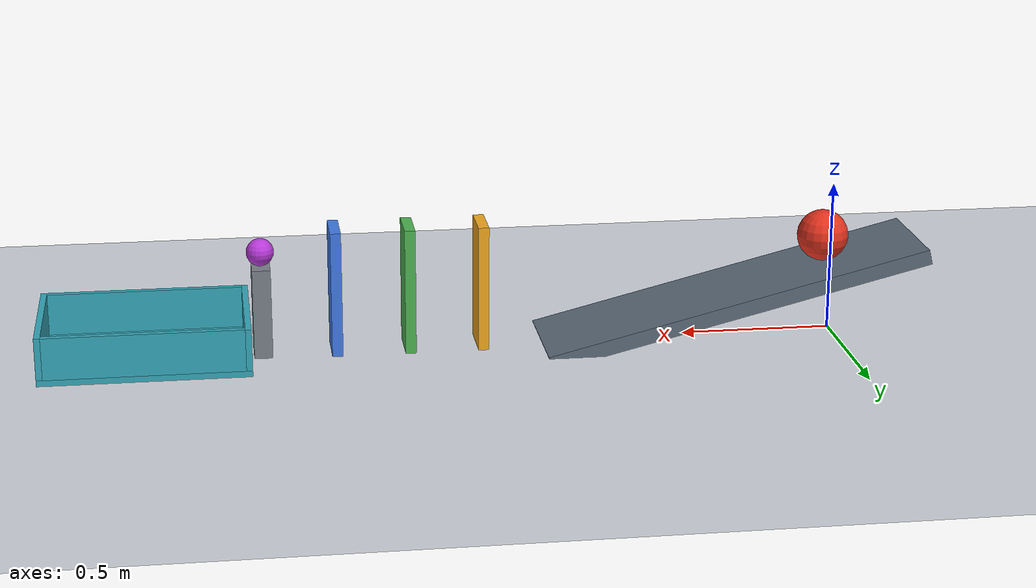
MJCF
<mujoco model="ramp_domino_chain_into_cup">
  <compiler angle="degree" inertiafromgeom="true"/>
  <option timestep="0.002" gravity="0 0 -9.81" integrator="implicitfast" iterations="100" tolerance="1e-10"/>
  <size njmax="500" nconmax="200"/>

  <visual>
    <headlight ambient="0.35 0.35 0.35" diffuse="0.7 0.7 0.7" specular="0.2 0.2 0.2"/>
    <global azimuth="125" elevation="-25"/>
  </visual>

  <worldbody>
    <light name="key_light" pos="0.5 -2 4" dir="0.2 0.4 -1" diffuse="0.8 0.8 0.8"/>
    <light name="fill_light" pos="3 2 3" dir="-0.3 -0.3 -1" diffuse="0.4 0.4 0.4"/>
    <camera name="overview" pos="3.6 -4.5 2.8" xyaxes="0.88 0.47 0 -0.22 0.41 0.89"/>

    <geom name="floor" type="plane" pos="0 0 0" size="5 3 0.1" condim="6" friction="0.95 0.005 0.001" solref="0.008 1" solimp="0.95 0.99 0.001" rgba="0.82 0.84 0.87 1"/>

    <!-- The ramp descends toward +x at 14 degrees. -->
    <body name="ramp" pos="0.34326 0 0.13499" quat="0.99254615 0 0.12186934 0">
      <geom name="ramp_surface" type="box" size="0.65 0.18 0.025" condim="6" friction="0.75 0.002 0.0001" solref="0.008 1" solimp="0.95 0.99 0.001" rgba="0.36 0.42 0.48 1"/>
    </body>

    <!-- Its surface contact point starts 1 m uphill from the ramp's lower end. -->
    <body name="ball1" pos="0.030269 0 0.326397">
      <freejoint name="ball1_free"/>
      <geom name="ball1_sphere" type="sphere" size="0.085" mass="0.60" condim="6" friction="0.75 0.002 0.0001" solref="0.008 1" solimp="0.95 0.99 0.001" rgba="0.90 0.20 0.12 1"/>
    </body>

    <body name="d1" pos="1.18 0 0.21">
      <freejoint name="d1_free"/>
      <geom name="d1_block" type="box" size="0.0175 0.075 0.21" mass="0.60" condim="3" friction="1.0 0.005 0.001" solref="0.006 1" solimp="0.95 0.99 0.001" rgba="0.95 0.66 0.12 1"/>
    </body>

    <body name="d2" pos="1.42 0 0.21">
      <freejoint name="d2_free"/>
      <geom name="d2_block" type="box" size="0.0175 0.075 0.21" mass="0.34" condim="3" friction="1.0 0.005 0.001" solref="0.006 1" solimp="0.95 0.99 0.001" rgba="0.30 0.70 0.32 1"/>
    </body>

    <body name="d3" pos="1.66 0 0.21">
      <freejoint name="d3_free"/>
      <geom name="d3_block" type="box" size="0.0175 0.075 0.21" mass="0.30" condim="3" friction="1.0 0.005 0.001" solref="0.006 1" solimp="0.95 0.99 0.001" rgba="0.25 0.48 0.90 1"/>
    </body>

    <!-- A narrow pedestal holds ball2 above the cup's entry rim. -->
    <body name="ball2_stand" pos="1.90 0 0.15">
      <geom name="ball2_stand_block" type="box" size="0.03 0.06 0.15" condim="6" friction="0.45 0.002 0.0001" solref="0.008 1" solimp="0.95 0.99 0.001" rgba="0.48 0.50 0.54 1"/>
    </body>

    <body name="ball2" pos="1.90 0 0.345">
      <freejoint name="ball2_free"/>
      <geom name="ball2_sphere" type="sphere" size="0.045" mass="0.07" condim="6" friction="0.55 0.005 0.002" solref="0.008 1" solimp="0.95 0.99 0.001" rgba="0.72 0.22 0.85 1"/>
    </body>

    <!-- Closed, open-top rectangular cup; its interior bottom is at z=0.02. -->
    <body name="cup" pos="2.28 0 0">
      <geom name="cup_bottom" type="box" pos="0 0 0.01" size="0.34 0.22 0.01" condim="6" friction="0.90 0.01 0.008" solref="0.01 1" solimp="0.95 0.99 0.001" rgba="0.20 0.65 0.72 1"/>
      <geom name="cup_entry_wall" type="box" pos="-0.33 0 0.09" size="0.01 0.22 0.07" condim="6" friction="0.90 0.01 0.008" solref="0.01 1" solimp="0.95 0.99 0.001" rgba="0.20 0.65 0.72 1"/>
      <geom name="cup_far_wall" type="box" pos="0.33 0 0.09" size="0.01 0.22 0.07" condim="6" friction="0.90 0.01 0.008" solref="0.01 1" solimp="0.95 0.99 0.001" rgba="0.20 0.65 0.72 1"/>
      <geom name="cup_left_wall" type="box" pos="0 0.21 0.09" size="0.32 0.01 0.07" condim="6" friction="0.90 0.01 0.008" solref="0.01 1" solimp="0.95 0.99 0.001" rgba="0.20 0.65 0.72 1"/>
      <geom name="cup_right_wall" type="box" pos="0 -0.21 0.09" size="0.32 0.01 0.07" condim="6" friction="0.90 0.01 0.008" solref="0.01 1" solimp="0.95 0.99 0.001" rgba="0.20 0.65 0.72 1"/>
    </body>
  </worldbody>

  <keyframe>
    <key name="start"/>
  </keyframe>
</mujoco>
